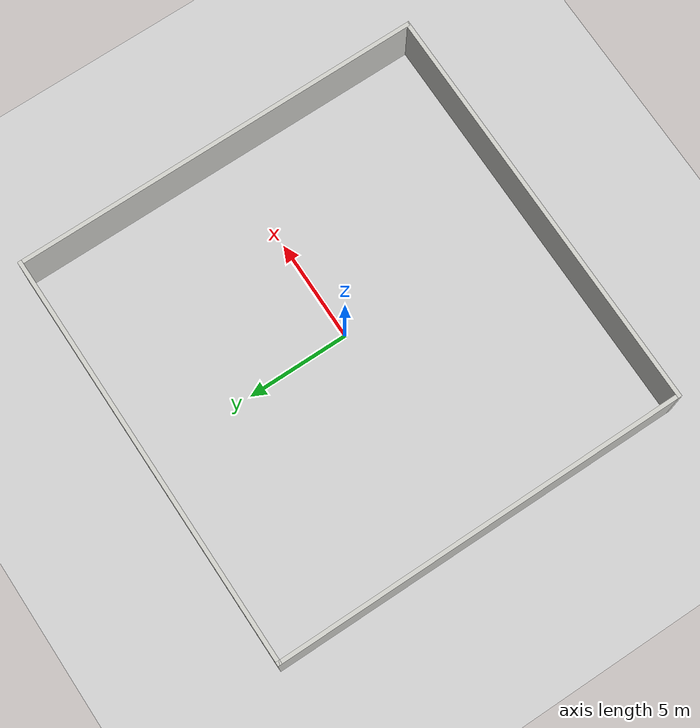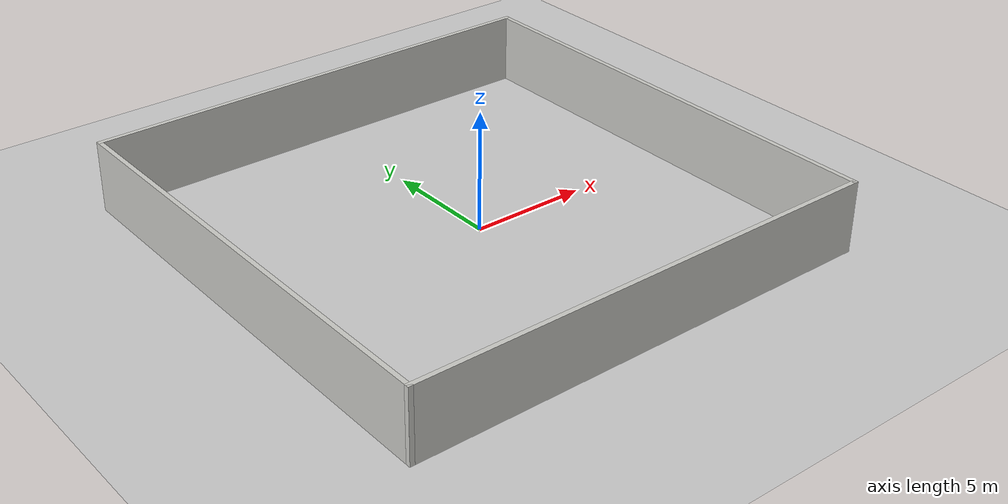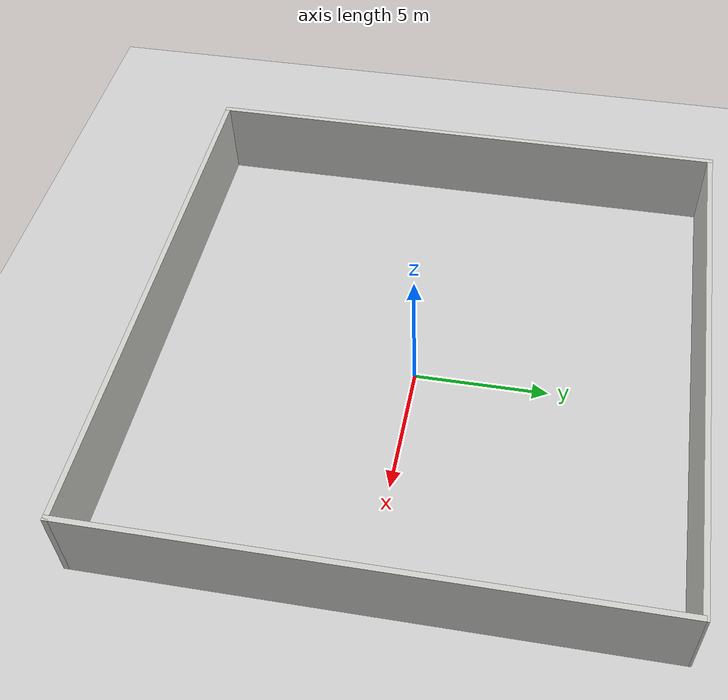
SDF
<sdf version="1.6">
 <world name="default">
  <light name="sun" type="directional">
   <pose>0 0 10 0 -0 0</pose>
   <diffuse>0.8 0.8 0.8 1</diffuse>
   <specular>0.2 0.2 0.2 1</specular>
   <attenuation>
    <range>1000</range>
    <constant>0.9</constant>
    <linear>0.01</linear>
    <quadratic>0.001</quadratic>
   </attenuation>
   <direction>-0.5 0.1 -0.9</direction>
  </light>
  <model name="ground_plane">
   <static>1</static>
   <link name="link">
    <collision name="collision">
     <geometry><plane><normal>0 0 1</normal><size>100 100</size></plane></geometry>
     <surface>
      <contact><collide_bitmask>65535</collide_bitmask></contact>
      <friction><ode><mu>100</mu><mu2>50</mu2></ode></friction>
     </surface>
    </collision>
    <visual name="visual">
     <cast_shadows>0</cast_shadows>
     <geometry><plane><normal>0 0 1</normal><size>100 100</size></plane></geometry>
     <material>
      <script><uri>file://media/materials/scripts/gazebo.material</uri><name>Gazebo/Grey</name></script>
     </material>
    </visual>
   </link>
  </model>
  <gravity>0 0 -9.8</gravity>
  <magnetic_field>6e-06 2.3e-05 -4.2e-05</magnetic_field>
  <atmosphere type="adiabatic"/>
  <physics name="default_physics" default="0" type="ode">
   <max_step_size>0.001</max_step_size>
   <real_time_factor>1</real_time_factor>
   <real_time_update_rate>1000</real_time_update_rate>
  </physics>
  <scene><ambient>0.4 0.4 0.4 1</ambient><background>0.7 0.7 0.7 1</background><shadows>1</shadows></scene>
  <audio><device>default</device></audio>
  <spherical_coordinates>
   <surface_model>EARTH_WGS84</surface_model>
   <latitude_deg>0</latitude_deg>
   <longitude_deg>0</longitude_deg>
   <elevation>0</elevation>
   <heading_deg>0</heading_deg>
  </spherical_coordinates>
  <model name="simple_pool">
   <pose>-0.404442 0.208808 0 0 -0 0</pose>
   <link name="Wall_32">
    <collision name="Wall_32_Collision">
     <geometry><box><size>20.5505 0.2 3</size></box></geometry>
     <pose>0 0 1.5 0 -0 0</pose>
    </collision>
    <visual name="Wall_32_Visual">
     <pose>0 0 1.5 0 -0 0</pose>
     <geometry><box><size>20.5505 0.2 3</size></box></geometry>
     <material>
      <script><uri>file://media/materials/scripts/gazebo.material</uri><name>Gazebo/CeilingTiled</name></script>
      <ambient>1 1 1 1</ambient>
     </material>
     <meta><layer>0</layer></meta>
    </visual>
    <pose>-0 -10.05 0 0 -0 3.14159</pose>
   </link>
   <link name="Wall_33">
    <collision name="Wall_33_Collision">
     <geometry><box><size>20.3 0.2 3</size></box></geometry>
     <pose>0 0 1.5 0 -0 0</pose>
    </collision>
    <visual name="Wall_33_Visual">
     <pose>0 0 1.5 0 -0 0</pose>
     <geometry><box><size>20.3 0.2 3</size></box></geometry>
     <material>
      <script><uri>file://media/materials/scripts/gazebo.material</uri><name>Gazebo/CeilingTiled</name></script>
      <ambient>1 1 1 1</ambient>
     </material>
     <meta><layer>0</layer></meta>
    </visual>
    <pose>-10.175 -0 0 0 -0 1.5708</pose>
   </link>
   <link name="Wall_34">
    <collision name="Wall_34_Collision">
     <geometry><box><size>20.5495 0.2 3</size></box></geometry>
     <pose>0 0 1.5 0 -0 0</pose>
    </collision>
    <visual name="Wall_34_Visual">
     <pose>0 0 1.5 0 -0 0</pose>
     <geometry><box><size>20.5495 0.2 3</size></box></geometry>
     <material>
      <script><uri>file://media/materials/scripts/gazebo.material</uri><name>Gazebo/CeilingTiled</name></script>
      <ambient>1 1 1 1</ambient>
     </material>
     <meta><layer>0</layer></meta>
    </visual>
    <pose>-0 10.05 0 0 -0 0</pose>
   </link>
   <link name="Wall_36">
    <collision name="Wall_36_Collision">
     <geometry><box><size>20.21 0.2 3</size></box></geometry>
     <pose>0 0 1.5 0 -0 0</pose>
    </collision>
    <visual name="Wall_36_Visual">
     <pose>0 0 1.5 0 -0 0</pose>
     <geometry><box><size>20.21 0.2 3</size></box></geometry>
     <material>
      <script><uri>file://media/materials/scripts/gazebo.material</uri><name>Gazebo/CeilingTiled</name></script>
      <ambient>1 1 1 1</ambient>
     </material>
     <meta><layer>0</layer></meta>
    </visual>
    <pose>10.175 -0.045 0 0 -0 1.5708</pose>
   </link>
   <static>1</static>
  </model>
 </world>
</sdf>
